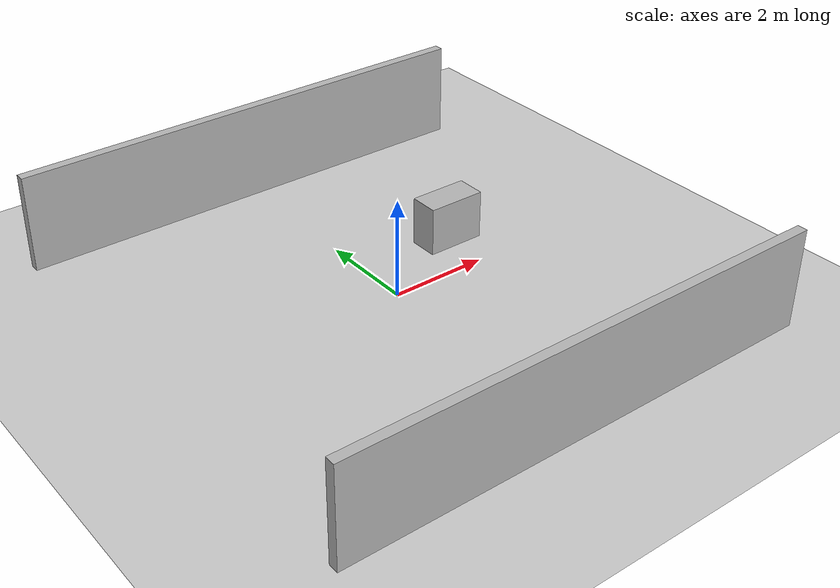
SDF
<?xml version="1.0" ?>
<sdf version="1.6">
  <world name="office">
    <include><uri>model://sun</uri></include>

    <!-- floor -->
    <model name="floor">
      <static>true</static>
      <link name="link">
        <collision name="collision">
          <geometry><plane><normal>0 0 1</normal><size>20 20</size></plane></geometry>
        </collision>
        <visual name="visual">
          <geometry><plane><normal>0 0 1</normal><size>20 20</size></plane></geometry>
        </visual>
      </link>
    </model>

    <!-- walls (simple box walls) -->
    <model name="wall_north">
      <static>true</static>
      <link name="link">
        <pose>0 5 1 0 0 0</pose>
        <collision name="collision"><geometry><box><size>10 0.2 2</size></box></geometry></collision>
        <visual name="visual"><geometry><box><size>10 0.2 2</size></box></geometry></visual>
      </link>
    </model>

    <model name="wall_south">
      <static>true</static>
      <link name="link">
        <pose>0 -5 1 0 0 0</pose>
        <collision name="collision"><geometry><box><size>10 0.2 2</size></box></geometry></collision>
        <visual name="visual"><geometry><box><size>10 0.2 2</size></box></geometry></visual>
      </link>
    </model>

    <!-- a table (box) -->
    <model name="table">
      <static>true</static>
      <link name="link">
        <pose>2 1 0.5 0 0 0</pose>
        <collision name="collision"><geometry><box><size>1.2 0.6 1.0</size></box></geometry></collision>
        <visual name="visual"><geometry><box><size>1.2 0.6 1.0</size></box></geometry></visual>
      </link>
    </model>

  </world>
</sdf>
